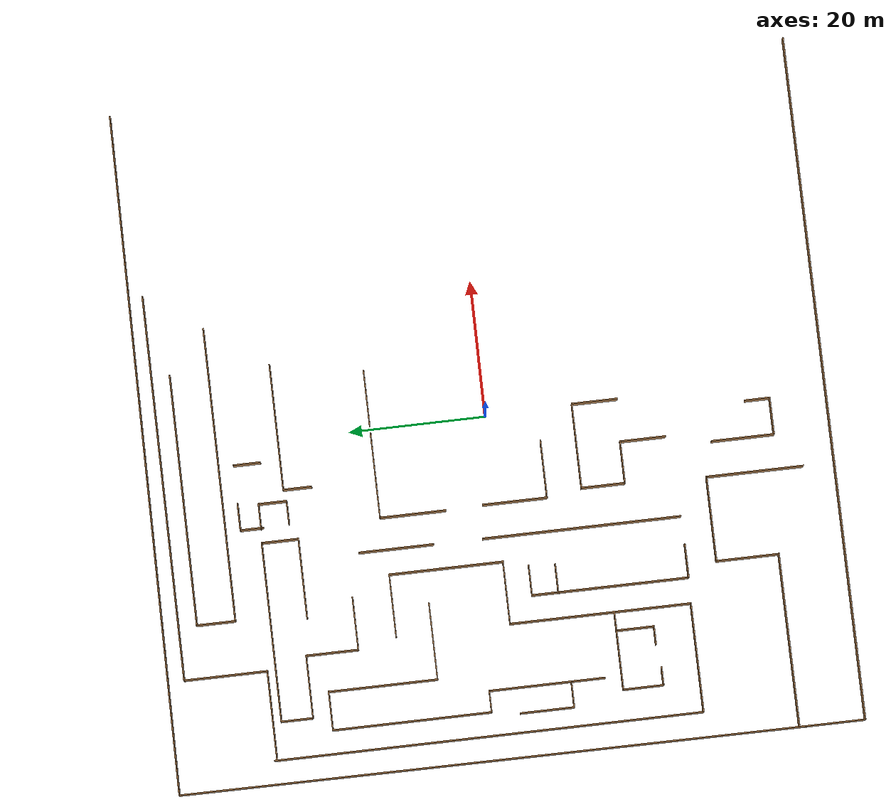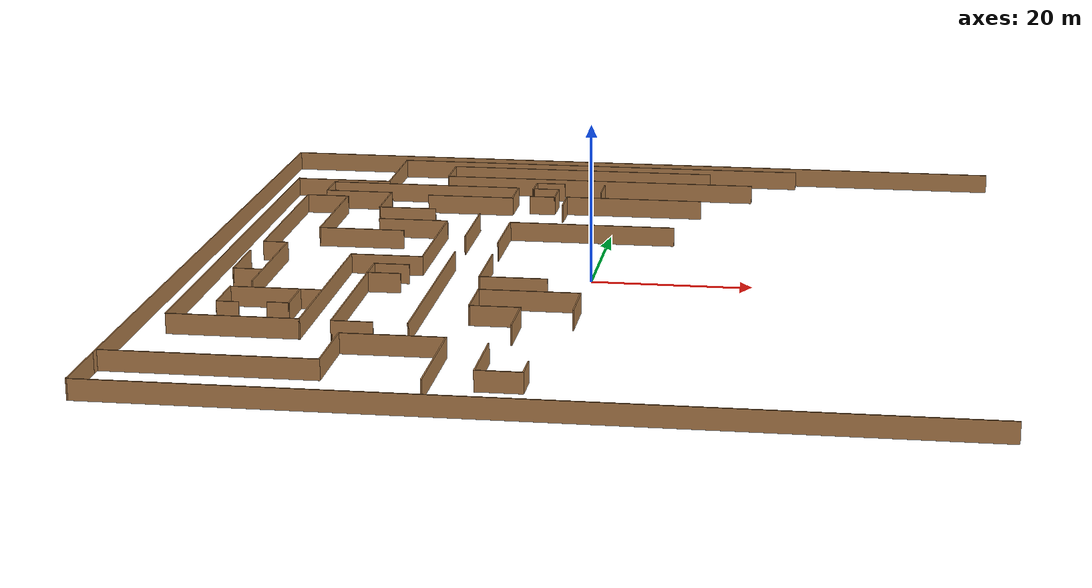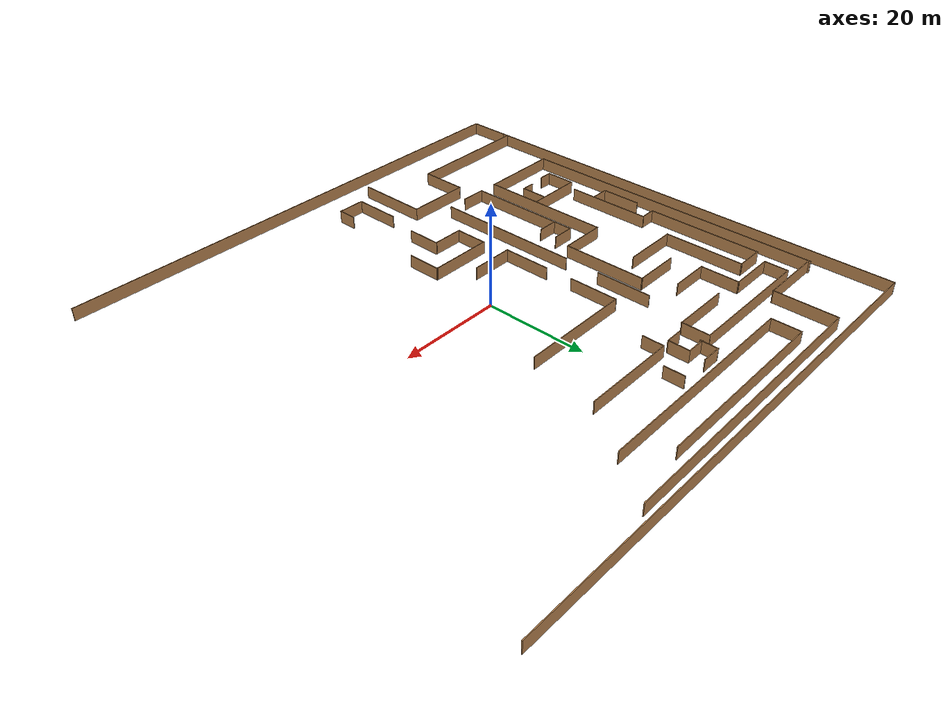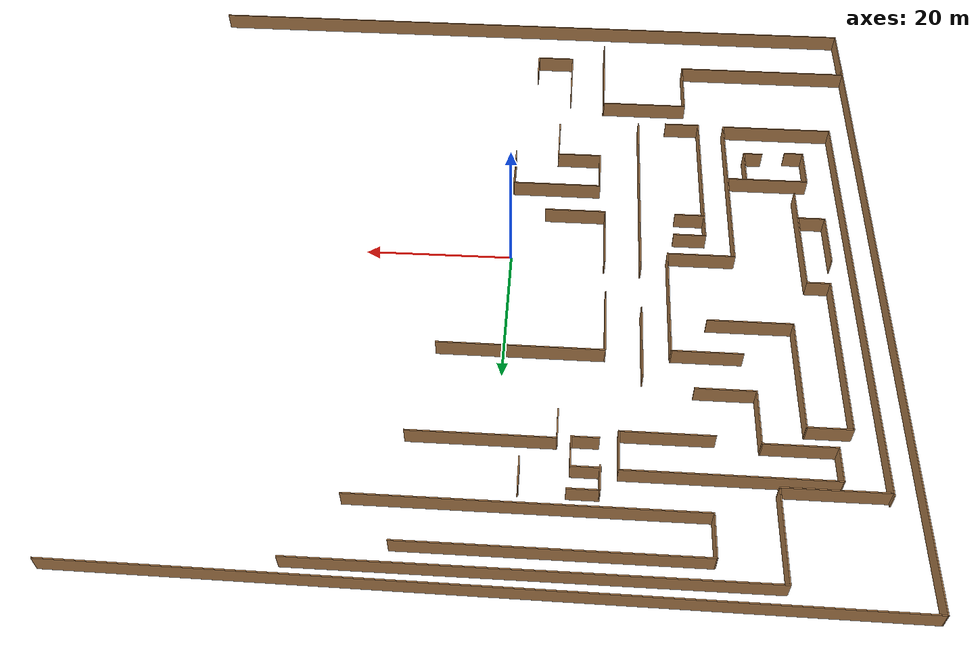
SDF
<sdf version="1.7">
 <model name="model4">
  <pose>0.113714 0.358597 0 0 -0 0</pose>
  <link name="Wall_100">
   <collision name="Wall_100_Collision">
    <geometry><box><size>26.25 0.15 2.5</size></box></geometry>
    <pose>0 0 1.25 0 -0 0</pose>
   </collision>
   <visual name="Wall_100_Visual">
    <pose>0 0 1.25 0 -0 0</pose>
    <geometry><box><size>26.25 0.15 2.5</size></box></geometry>
    <material>
     <script><uri>file://media/materials/scripts/gazebo.material</uri><name>Gazebo/Wood</name></script>
     <ambient>1 1 1 1</ambient>
    </material>
    <meta><layer>0</layer></meta>
   </visual>
   <pose>-27.882 34.0515 0 0 -0 0</pose>
  </link>
  <link name="Wall_101">
   <collision name="Wall_101_Collision">
    <geometry><box><size>5.5 0.15 2.5</size></box></geometry>
    <pose>0 0 1.25 0 -0 0</pose>
   </collision>
   <visual name="Wall_101_Visual">
    <pose>0 0 1.25 0 -0 0</pose>
    <geometry><box><size>5.5 0.15 2.5</size></box></geometry>
    <material>
     <script><uri>file://media/materials/scripts/gazebo.material</uri><name>Gazebo/Wood</name></script>
     <ambient>1 1 1 1</ambient>
    </material>
    <meta><layer>0</layer></meta>
   </visual>
   <pose>-14.832 31.3765 0 0 -0 -1.5708</pose>
  </link>
  <link name="Wall_102">
   <collision name="Wall_102_Collision">
    <geometry><box><size>11.75 0.15 2.5</size></box></geometry>
    <pose>0 0 1.25 0 -0 0</pose>
   </collision>
   <visual name="Wall_102_Visual">
    <pose>0 0 1.25 0 -0 0</pose>
    <geometry><box><size>11.75 0.15 2.5</size></box></geometry>
    <material>
     <script><uri>file://media/materials/scripts/gazebo.material</uri><name>Gazebo/Wood</name></script>
     <ambient>1 1 1 1</ambient>
    </material>
    <meta><layer>0</layer></meta>
   </visual>
   <pose>-20.632 28.7015 0 0 -0 3.14159</pose>
  </link>
  <link name="Wall_105">
   <collision name="Wall_105_Collision">
    <geometry><box><size>43 0.15 2.5</size></box></geometry>
    <pose>0 0 1.25 0 -0 0</pose>
   </collision>
   <visual name="Wall_105_Visual">
    <pose>0 0 1.25 0 -0 0</pose>
    <geometry><box><size>43 0.15 2.5</size></box></geometry>
    <material>
     <script><uri>file://media/materials/scripts/gazebo.material</uri><name>Gazebo/Wood</name></script>
     <ambient>1 1 1 1</ambient>
    </material>
    <meta><layer>0</layer></meta>
   </visual>
   <pose>-4.24968 39.0874 0 0 -0 3.14159</pose>
  </link>
  <link name="Wall_106">
   <collision name="Wall_106_Collision">
    <geometry><box><size>5.75 0.15 2.5</size></box></geometry>
    <pose>0 0 1.25 0 -0 0</pose>
   </collision>
   <visual name="Wall_106_Visual">
    <pose>0 0 1.25 0 -0 0</pose>
    <geometry><box><size>5.75 0.15 2.5</size></box></geometry>
    <material>
     <script><uri>file://media/materials/scripts/gazebo.material</uri><name>Gazebo/Wood</name></script>
     <ambient>1 1 1 1</ambient>
    </material>
    <meta><layer>0</layer></meta>
   </visual>
   <pose>-25.6747 41.8874 0 0 -0 1.5708</pose>
  </link>
  <link name="Wall_107">
   <collision name="Wall_107_Collision">
    <geometry><box><size>36.75 0.15 2.5</size></box></geometry>
    <pose>0 0 1.25 0 -0 0</pose>
   </collision>
   <visual name="Wall_107_Visual">
    <pose>0 0 1.25 0 -0 0</pose>
    <geometry><box><size>36.75 0.15 2.5</size></box></geometry>
    <material>
     <script><uri>file://media/materials/scripts/gazebo.material</uri><name>Gazebo/Wood</name></script>
     <ambient>1 1 1 1</ambient>
    </material>
    <meta><layer>0</layer></meta>
   </visual>
   <pose>-7.37468 44.6874 0 0 -0 0</pose>
  </link>
  <link name="Wall_109">
   <collision name="Wall_109_Collision">
    <geometry><box><size>4.25 0.15 2.5</size></box></geometry>
    <pose>0 0 1.25 0 -0 0</pose>
   </collision>
   <visual name="Wall_109_Visual">
    <pose>0 0 1.25 0 -0 0</pose>
    <geometry><box><size>4.25 0.15 2.5</size></box></geometry>
    <material>
     <script><uri>file://media/materials/scripts/gazebo.material</uri><name>Gazebo/Wood</name></script>
     <ambient>1 1 1 1</ambient>
    </material>
    <meta><layer>0</layer></meta>
   </visual>
   <pose>-7.48087 28.0423 0 0 -0 1.5708</pose>
  </link>
  <link name="Wall_110">
   <collision name="Wall_110_Collision">
    <geometry><box><size>18.5 0.15 2.5</size></box></geometry>
    <pose>0 0 1.25 0 -0 0</pose>
   </collision>
   <visual name="Wall_110_Visual">
    <pose>0 0 1.25 0 -0 0</pose>
    <geometry><box><size>18.5 0.15 2.5</size></box></geometry>
    <material>
     <script><uri>file://media/materials/scripts/gazebo.material</uri><name>Gazebo/Wood</name></script>
     <ambient>1 1 1 1</ambient>
    </material>
    <meta><layer>0</layer></meta>
   </visual>
   <pose>1.69413 30.0923 0 0 -0 0</pose>
  </link>
  <link name="Wall_115">
   <collision name="Wall_115_Collision">
    <geometry><box><size>4 0.15 2.5</size></box></geometry>
    <pose>0 0 1.25 0 -0 0</pose>
   </collision>
   <visual name="Wall_115_Visual">
    <pose>0 0 1.25 0 -0 0</pose>
    <geometry><box><size>4 0.15 2.5</size></box></geometry>
    <material>
     <script><uri>file://media/materials/scripts/gazebo.material</uri><name>Gazebo/Wood</name></script>
     <ambient>1 1 1 1</ambient>
    </material>
    <meta><layer>0</layer></meta>
   </visual>
   <pose>-3.13087 34.9173 0 0 -0 -1.5708</pose>
  </link>
  <link name="Wall_129">
   <collision name="Wall_129_Collision">
    <geometry><box><size>4 0.15 2.5</size></box></geometry>
    <pose>0 0 1.25 0 -0 0</pose>
   </collision>
   <visual name="Wall_129_Visual">
    <pose>0 0 1.25 0 -0 0</pose>
    <geometry><box><size>4 0.15 2.5</size></box></geometry>
    <material>
     <script><uri>file://media/materials/scripts/gazebo.material</uri><name>Gazebo/Wood</name></script>
     <ambient>1 1 1 1</ambient>
    </material>
    <meta><layer>0</layer></meta>
   </visual>
   <pose>-10.7234 36.9088 0 0 -0 3.14159</pose>
  </link>
  <link name="Wall_130">
   <collision name="Wall_130_Collision">
    <geometry><box><size>3.5 0.15 2.5</size></box></geometry>
    <pose>0 0 1.25 0 -0 0</pose>
   </collision>
   <visual name="Wall_130_Visual">
    <pose>0 0 1.25 0 -0 0</pose>
    <geometry><box><size>3.5 0.15 2.5</size></box></geometry>
    <material>
     <script><uri>file://media/materials/scripts/gazebo.material</uri><name>Gazebo/Wood</name></script>
     <ambient>1 1 1 1</ambient>
    </material>
    <meta><layer>0</layer></meta>
   </visual>
   <pose>-12.6484 35.2338 0 0 -0 -1.5708</pose>
  </link>
  <link name="Wall_133">
   <collision name="Wall_133_Collision">
    <geometry><box><size>3.75 0.15 2.5</size></box></geometry>
    <pose>0 0 1.25 0 -0 0</pose>
   </collision>
   <visual name="Wall_133_Visual">
    <pose>0 0 1.25 0 -0 0</pose>
    <geometry><box><size>3.75 0.15 2.5</size></box></geometry>
    <material>
     <script><uri>file://media/materials/scripts/gazebo.material</uri><name>Gazebo/Wood</name></script>
     <ambient>1 1 1 1</ambient>
    </material>
    <meta><layer>0</layer></meta>
   </visual>
   <pose>-10.9509 33.8973 0 0 -0 0</pose>
  </link>
  <link name="Wall_134">
   <collision name="Wall_134_Collision">
    <geometry><box><size>4.25 0.15 2.5</size></box></geometry>
    <pose>0 0 1.25 0 -0 0</pose>
   </collision>
   <visual name="Wall_134_Visual">
    <pose>0 0 1.25 0 -0 0</pose>
    <geometry><box><size>4.25 0.15 2.5</size></box></geometry>
    <material>
     <script><uri>file://media/materials/scripts/gazebo.material</uri><name>Gazebo/Wood</name></script>
     <ambient>1 1 1 1</ambient>
    </material>
    <meta><layer>0</layer></meta>
   </visual>
   <pose>-9.1509 31.8473 0 0 -0 -1.5708</pose>
  </link>
  <link name="Wall_135">
   <collision name="Wall_135_Collision">
    <geometry><box><size>3.5 0.15 2.5</size></box></geometry>
    <pose>0 0 1.25 0 -0 0</pose>
   </collision>
   <visual name="Wall_135_Visual">
    <pose>0 0 1.25 0 -0 0</pose>
    <geometry><box><size>3.5 0.15 2.5</size></box></geometry>
    <material>
     <script><uri>file://media/materials/scripts/gazebo.material</uri><name>Gazebo/Wood</name></script>
     <ambient>1 1 1 1</ambient>
    </material>
    <meta><layer>0</layer></meta>
   </visual>
   <pose>-10.8259 29.7973 0 0 -0 3.14159</pose>
  </link>
  <link name="Wall_139">
   <collision name="Wall_139_Collision">
    <geometry><box><size>9.25 0.15 2.5</size></box></geometry>
    <pose>0 0 1.25 0 -0 0</pose>
   </collision>
   <visual name="Wall_139_Visual">
    <pose>0 0 1.25 0 -0 0</pose>
    <geometry><box><size>9.25 0.15 2.5</size></box></geometry>
    <material>
     <script><uri>file://media/materials/scripts/gazebo.material</uri><name>Gazebo/Wood</name></script>
     <ambient>1 1 1 1</ambient>
    </material>
    <meta><layer>0</layer></meta>
   </visual>
   <pose>-7.48087 -37.0926 0 0 -0 -1.5708</pose>
  </link>
  <link name="Wall_140">
   <collision name="Wall_140_Collision">
    <geometry><box><size>5.5 0.15 2.5</size></box></geometry>
    <pose>0 0 1.25 0 -0 0</pose>
   </collision>
   <visual name="Wall_140_Visual">
    <pose>0 0 1.25 0 -0 0</pose>
    <geometry><box><size>5.5 0.15 2.5</size></box></geometry>
    <material>
     <script><uri>file://media/materials/scripts/gazebo.material</uri><name>Gazebo/Wood</name></script>
     <ambient>1 1 1 1</ambient>
    </material>
    <meta><layer>0</layer></meta>
   </visual>
   <pose>-4.80587 -41.6427 0 0 -0 0</pose>
  </link>
  <link name="Wall_141">
   <collision name="Wall_141_Collision">
    <geometry><box><size>3.75 0.15 2.5</size></box></geometry>
    <pose>0 0 1.25 0 -0 0</pose>
   </collision>
   <visual name="Wall_141_Visual">
    <pose>0 0 1.25 0 -0 0</pose>
    <geometry><box><size>3.75 0.15 2.5</size></box></geometry>
    <material>
     <script><uri>file://media/materials/scripts/gazebo.material</uri><name>Gazebo/Wood</name></script>
     <ambient>1 1 1 1</ambient>
    </material>
    <meta><layer>0</layer></meta>
   </visual>
   <pose>-2.13087 -39.8426 0 0 -0 1.5708</pose>
  </link>
  <link name="Wall_154">
   <collision name="Wall_154_Collision">
    <geometry><box><size>6.75 0.15 2.5</size></box></geometry>
    <pose>0 0 1.25 0 -0 0</pose>
   </collision>
   <visual name="Wall_154_Visual">
    <pose>0 0 1.25 0 -0 0</pose>
    <geometry><box><size>6.75 0.15 2.5</size></box></geometry>
    <material>
     <script><uri>file://media/materials/scripts/gazebo.material</uri><name>Gazebo/Wood</name></script>
     <ambient>1 1 1 1</ambient>
    </material>
    <meta><layer>0</layer></meta>
   </visual>
   <pose>0.235952 -16.2558 0 0 -0 1.5708</pose>
  </link>
  <link name="Wall_155">
   <collision name="Wall_155_Collision">
    <geometry><box><size>12.5 0.15 2.5</size></box></geometry>
    <pose>0 0 1.25 0 -0 0</pose>
   </collision>
   <visual name="Wall_155_Visual">
    <pose>0 0 1.25 0 -0 0</pose>
    <geometry><box><size>12.5 0.15 2.5</size></box></geometry>
    <material>
     <script><uri>file://media/materials/scripts/gazebo.material</uri><name>Gazebo/Wood</name></script>
     <ambient>1 1 1 1</ambient>
    </material>
    <meta><layer>0</layer></meta>
   </visual>
   <pose>-5.93905 -12.9558 0 0 -0 3.14159</pose>
  </link>
  <link name="Wall_156">
   <collision name="Wall_156_Collision">
    <geometry><box><size>6.5 0.15 2.5</size></box></geometry>
    <pose>0 0 1.25 0 -0 0</pose>
   </collision>
   <visual name="Wall_156_Visual">
    <pose>0 0 1.25 0 -0 0</pose>
    <geometry><box><size>6.5 0.15 2.5</size></box></geometry>
    <material>
     <script><uri>file://media/materials/scripts/gazebo.material</uri><name>Gazebo/Wood</name></script>
     <ambient>1 1 1 1</ambient>
    </material>
    <meta><layer>0</layer></meta>
   </visual>
   <pose>-12.114 -16.1308 0 0 -0 -1.5708</pose>
  </link>
  <link name="Wall_157">
   <collision name="Wall_157_Collision">
    <geometry><box><size>6.25 0.15 2.5</size></box></geometry>
    <pose>0 0 1.25 0 -0 0</pose>
   </collision>
   <visual name="Wall_157_Visual">
    <pose>0 0 1.25 0 -0 0</pose>
    <geometry><box><size>6.25 0.15 2.5</size></box></geometry>
    <material>
     <script><uri>file://media/materials/scripts/gazebo.material</uri><name>Gazebo/Wood</name></script>
     <ambient>1 1 1 1</ambient>
    </material>
    <meta><layer>0</layer></meta>
   </visual>
   <pose>-9.06405 -19.3058 0 0 -0 0</pose>
  </link>
  <link name="Wall_158">
   <collision name="Wall_158_Collision">
    <geometry><box><size>6.75 0.15 2.5</size></box></geometry>
    <pose>0 0 1.25 0 -0 0</pose>
   </collision>
   <visual name="Wall_158_Visual">
    <pose>0 0 1.25 0 -0 0</pose>
    <geometry><box><size>6.75 0.15 2.5</size></box></geometry>
    <material>
     <script><uri>file://media/materials/scripts/gazebo.material</uri><name>Gazebo/Wood</name></script>
     <ambient>1 1 1 1</ambient>
    </material>
    <meta><layer>0</layer></meta>
   </visual>
   <pose>-6.01405 -22.6058 0 0 -0 -1.5708</pose>
  </link>
  <link name="Wall_20">
   <collision name="Wall_20_Collision">
    <geometry><box><size>91.4233 0.15 2.5</size></box></geometry>
    <pose>0 0 1.25 0 -0 0</pose>
   </collision>
   <visual name="Wall_20_Visual">
    <pose>0 0 1.25 0 -0 0</pose>
    <geometry><box><size>91.4233 0.15 2.5</size></box></geometry>
    <material>
     <script><uri>file://media/materials/scripts/gazebo.material</uri><name>Gazebo/Wood</name></script>
     <ambient>1 1 1 1</ambient>
    </material>
    <meta><layer>0</layer></meta>
   </visual>
   <pose>-50.0112 4.21794 0 0 -0 1.56721</pose>
  </link>
  <link name="Wall_22">
   <collision name="Wall_22_Collision">
    <geometry><box><size>8.75 0.15 2.5</size></box></geometry>
    <pose>0 0 1.25 0 -0 0</pose>
   </collision>
   <visual name="Wall_22_Visual">
    <pose>0 0 1.25 0 -0 0</pose>
    <geometry><box><size>8.75 0.15 2.5</size></box></geometry>
    <material>
     <script><uri>file://media/materials/scripts/gazebo.material</uri><name>Gazebo/Wood</name></script>
     <ambient>1 1 1 1</ambient>
    </material>
    <meta><layer>0</layer></meta>
   </visual>
   <pose>-50.1749 -45.5547 0 0 -0 -1.5708</pose>
  </link>
  <link name="Wall_24">
   <collision name="Wall_24_Collision">
    <geometry><box><size>100.5 0.15 2.5</size></box></geometry>
    <pose>0 0 1.25 0 -0 0</pose>
   </collision>
   <visual name="Wall_24_Visual">
    <pose>0 0 1.25 0 -0 0</pose>
    <geometry><box><size>100.5 0.15 2.5</size></box></geometry>
    <material>
     <script><uri>file://media/materials/scripts/gazebo.material</uri><name>Gazebo/Wood</name></script>
     <ambient>1 1 1 1</ambient>
    </material>
    <meta><layer>0</layer></meta>
   </visual>
   <pose>0.000134 -49.8547 0 0 -0 0</pose>
  </link>
  <link name="Wall_28">
   <collision name="Wall_28_Collision">
    <geometry><box><size>99.8241 0.15 2.5</size></box></geometry>
    <pose>0 0 1.25 0 -0 0</pose>
   </collision>
   <visual name="Wall_28_Visual">
    <pose>0 0 1.25 0 -0 0</pose>
    <geometry><box><size>99.8241 0.15 2.5</size></box></geometry>
    <material>
     <script><uri>file://media/materials/scripts/gazebo.material</uri><name>Gazebo/Wood</name></script>
     <ambient>1 1 1 1</ambient>
    </material>
    <meta><layer>0</layer></meta>
   </visual>
   <pose>-0.011429 49.5513 0 0 -0 -0.006079</pose>
  </link>
  <link name="Wall_31">
   <collision name="Wall_31_Collision">
    <geometry><box><size>25.25 0.15 2.5</size></box></geometry>
    <pose>0 0 1.25 0 -0 0</pose>
   </collision>
   <visual name="Wall_31_Visual">
    <pose>0 0 1.25 0 -0 0</pose>
    <geometry><box><size>25.25 0.15 2.5</size></box></geometry>
    <material>
     <script><uri>file://media/materials/scripts/gazebo.material</uri><name>Gazebo/Wood</name></script>
     <ambient>1 1 1 1</ambient>
    </material>
    <meta><layer>0</layer></meta>
   </visual>
   <pose>-37.4612 -40.2727 0 0 -0 0</pose>
  </link>
  <link name="Wall_32">
   <collision name="Wall_32_Collision">
    <geometry><box><size>9.25 0.15 2.5</size></box></geometry>
    <pose>0 0 1.25 0 -0 0</pose>
   </collision>
   <visual name="Wall_32_Visual">
    <pose>0 0 1.25 0 -0 0</pose>
    <geometry><box><size>9.25 0.15 2.5</size></box></geometry>
    <material>
     <script><uri>file://media/materials/scripts/gazebo.material</uri><name>Gazebo/Wood</name></script>
     <ambient>1 1 1 1</ambient>
    </material>
    <meta><layer>0</layer></meta>
   </visual>
   <pose>-24.9112 -35.7227 0 0 -0 1.5708</pose>
  </link>
  <link name="Wall_33">
   <collision name="Wall_33_Collision">
    <geometry><box><size>12.5 0.15 2.5</size></box></geometry>
    <pose>0 0 1.25 0 -0 0</pose>
   </collision>
   <visual name="Wall_33_Visual">
    <pose>0 0 1.25 0 -0 0</pose>
    <geometry><box><size>12.5 0.15 2.5</size></box></geometry>
    <material>
     <script><uri>file://media/materials/scripts/gazebo.material</uri><name>Gazebo/Wood</name></script>
     <ambient>1 1 1 1</ambient>
    </material>
    <meta><layer>0</layer></meta>
   </visual>
   <pose>-18.7362 -31.1727 0 0 -0 0</pose>
  </link>
  <link name="Wall_34">
   <collision name="Wall_34_Collision">
    <geometry><box><size>14.25 0.15 2.5</size></box></geometry>
    <pose>0 0 1.25 0 -0 0</pose>
   </collision>
   <visual name="Wall_34_Visual">
    <pose>0 0 1.25 0 -0 0</pose>
    <geometry><box><size>14.25 0.15 2.5</size></box></geometry>
    <material>
     <script><uri>file://media/materials/scripts/gazebo.material</uri><name>Gazebo/Wood</name></script>
     <ambient>1 1 1 1</ambient>
    </material>
    <meta><layer>0</layer></meta>
   </visual>
   <pose>-12.5612 -38.2227 0 0 -0 -1.5708</pose>
  </link>
  <link name="Wall_45">
   <collision name="Wall_45_Collision">
    <geometry><box><size>56.5 0.15 2.5</size></box></geometry>
    <pose>0 0 1.25 0 -0 0</pose>
   </collision>
   <visual name="Wall_45_Visual">
    <pose>0 0 1.25 0 -0 0</pose>
    <geometry><box><size>56.5 0.15 2.5</size></box></geometry>
    <material>
     <script><uri>file://media/materials/scripts/gazebo.material</uri><name>Gazebo/Wood</name></script>
     <ambient>1 1 1 1</ambient>
    </material>
    <meta><layer>0</layer></meta>
   </visual>
   <pose>-5.2362 47.3773 0 0 -0 3.14159</pose>
  </link>
  <link name="Wall_46">
   <collision name="Wall_46_Collision">
    <geometry><box><size>12.25 0.15 2.5</size></box></geometry>
    <pose>0 0 1.25 0 -0 0</pose>
   </collision>
   <visual name="Wall_46_Visual">
    <pose>0 0 1.25 0 -0 0</pose>
    <geometry><box><size>12.25 0.15 2.5</size></box></geometry>
    <material>
     <script><uri>file://media/materials/scripts/gazebo.material</uri><name>Gazebo/Wood</name></script>
     <ambient>1 1 1 1</ambient>
    </material>
    <meta><layer>0</layer></meta>
   </visual>
   <pose>-33.4112 41.3273 0 0 -0 -1.5708</pose>
  </link>
  <link name="Wall_47">
   <collision name="Wall_47_Collision">
    <geometry><box><size>13 0.15 2.5</size></box></geometry>
    <pose>0 0 1.25 0 -0 0</pose>
   </collision>
   <visual name="Wall_47_Visual">
    <pose>0 0 1.25 0 -0 0</pose>
    <geometry><box><size>13 0.15 2.5</size></box></geometry>
    <material>
     <script><uri>file://media/materials/scripts/gazebo.material</uri><name>Gazebo/Wood</name></script>
     <ambient>1 1 1 1</ambient>
    </material>
    <meta><layer>0</layer></meta>
   </visual>
   <pose>-39.8362 35.2773 0 0 -0 3.14159</pose>
  </link>
  <link name="Wall_50">
   <collision name="Wall_50_Collision">
    <geometry><box><size>62.5 0.15 2.5</size></box></geometry>
    <pose>0 0 1.25 0 -0 0</pose>
   </collision>
   <visual name="Wall_50_Visual">
    <pose>0 0 1.25 0 -0 0</pose>
    <geometry><box><size>62.5 0.15 2.5</size></box></geometry>
    <material>
     <script><uri>file://media/materials/scripts/gazebo.material</uri><name>Gazebo/Wood</name></script>
     <ambient>1 1 1 1</ambient>
    </material>
    <meta><layer>0</layer></meta>
   </visual>
   <pose>-46.4414 4.41625 0 0 -0 -1.5708</pose>
  </link>
  <link name="Wall_51">
   <collision name="Wall_51_Collision">
    <geometry><box><size>16 0.15 2.5</size></box></geometry>
    <pose>0 0 1.25 0 -0 0</pose>
   </collision>
   <visual name="Wall_51_Visual">
    <pose>0 0 1.25 0 -0 0</pose>
    <geometry><box><size>16 0.15 2.5</size></box></geometry>
    <material>
     <script><uri>file://media/materials/scripts/gazebo.material</uri><name>Gazebo/Wood</name></script>
     <ambient>1 1 1 1</ambient>
    </material>
    <meta><layer>0</layer></meta>
   </visual>
   <pose>-38.5164 -26.7588 0 0 -0 0</pose>
  </link>
  <link name="Wall_52">
   <collision name="Wall_52_Collision">
    <geometry><box><size>26.5 0.15 2.5</size></box></geometry>
    <pose>0 0 1.25 0 -0 0</pose>
   </collision>
   <visual name="Wall_52_Visual">
    <pose>0 0 1.25 0 -0 0</pose>
    <geometry><box><size>26.5 0.15 2.5</size></box></geometry>
    <material>
     <script><uri>file://media/materials/scripts/gazebo.material</uri><name>Gazebo/Wood</name></script>
     <ambient>1 1 1 1</ambient>
    </material>
    <meta><layer>0</layer></meta>
   </visual>
   <pose>-30.5914 -13.5838 0 0 -0 1.5708</pose>
  </link>
  <link name="Wall_54">
   <collision name="Wall_54_Collision">
    <geometry><box><size>9.75 0.15 2.5</size></box></geometry>
    <pose>0 0 1.25 0 -0 0</pose>
   </collision>
   <visual name="Wall_54_Visual">
    <pose>0 0 1.25 0 -0 0</pose>
    <geometry><box><size>9.75 0.15 2.5</size></box></geometry>
    <material>
     <script><uri>file://media/materials/scripts/gazebo.material</uri><name>Gazebo/Wood</name></script>
     <ambient>1 1 1 1</ambient>
    </material>
    <meta><layer>0</layer></meta>
   </visual>
   <pose>-13.1273 11.7825 0 0 -0 1.5708</pose>
  </link>
  <link name="Wall_55">
   <collision name="Wall_55_Collision">
    <geometry><box><size>21.75 0.15 2.5</size></box></geometry>
    <pose>0 0 1.25 0 -0 0</pose>
   </collision>
   <visual name="Wall_55_Visual">
    <pose>0 0 1.25 0 -0 0</pose>
    <geometry><box><size>21.75 0.15 2.5</size></box></geometry>
    <material>
     <script><uri>file://media/materials/scripts/gazebo.material</uri><name>Gazebo/Wood</name></script>
     <ambient>1 1 1 1</ambient>
    </material>
    <meta><layer>0</layer></meta>
   </visual>
   <pose>-2.32733 16.5825 0 0 -0 0</pose>
  </link>
  <link name="Wall_58">
   <collision name="Wall_58_Collision">
    <geometry><box><size>9.5 0.15 2.5</size></box></geometry>
    <pose>0 0 1.25 0 -0 0</pose>
   </collision>
   <visual name="Wall_58_Visual">
    <pose>0 0 1.25 0 -0 0</pose>
    <geometry><box><size>9.5 0.15 2.5</size></box></geometry>
    <material>
     <script><uri>file://media/materials/scripts/gazebo.material</uri><name>Gazebo/Wood</name></script>
     <ambient>1 1 1 1</ambient>
    </material>
    <meta><layer>0</layer></meta>
   </visual>
   <pose>-12.9391 -3.1507 0 0 -0 -1.5708</pose>
  </link>
  <link name="Wall_59">
   <collision name="Wall_59_Collision">
    <geometry><box><size>8.5 0.15 2.5</size></box></geometry>
    <pose>0 0 1.25 0 -0 0</pose>
   </collision>
   <visual name="Wall_59_Visual">
    <pose>0 0 1.25 0 -0 0</pose>
    <geometry><box><size>8.5 0.15 2.5</size></box></geometry>
    <material>
     <script><uri>file://media/materials/scripts/gazebo.material</uri><name>Gazebo/Wood</name></script>
     <ambient>1 1 1 1</ambient>
    </material>
    <meta><layer>0</layer></meta>
   </visual>
   <pose>-8.76411 -7.8257 0 0 -0 0</pose>
  </link>
  <link name="Wall_65">
   <collision name="Wall_65_Collision">
    <geometry><box><size>9.25 0.15 2.5</size></box></geometry>
    <pose>0 0 1.25 0 -0 0</pose>
   </collision>
   <visual name="Wall_65_Visual">
    <pose>0 0 1.25 0 -0 0</pose>
    <geometry><box><size>9.25 0.15 2.5</size></box></geometry>
    <material>
     <script><uri>file://media/materials/scripts/gazebo.material</uri><name>Gazebo/Wood</name></script>
     <ambient>1 1 1 1</ambient>
    </material>
    <meta><layer>0</layer></meta>
   </visual>
   <pose>-26.0414 -0.408754 0 0 -0 0</pose>
  </link>
  <link name="Wall_66">
   <collision name="Wall_66_Collision">
    <geometry><box><size>16.75 0.15 2.5</size></box></geometry>
    <pose>0 0 1.25 0 -0 0</pose>
   </collision>
   <visual name="Wall_66_Visual">
    <pose>0 0 1.25 0 -0 0</pose>
    <geometry><box><size>16.75 0.15 2.5</size></box></geometry>
    <material>
     <script><uri>file://media/materials/scripts/gazebo.material</uri><name>Gazebo/Wood</name></script>
     <ambient>1 1 1 1</ambient>
    </material>
    <meta><layer>0</layer></meta>
   </visual>
   <pose>-21.4914 7.89125 0 0 -0 1.5708</pose>
  </link>
  <link name="Wall_67">
   <collision name="Wall_67_Collision">
    <geometry><box><size>9.25 0.15 2.5</size></box></geometry>
    <pose>0 0 1.25 0 -0 0</pose>
   </collision>
   <visual name="Wall_67_Visual">
    <pose>0 0 1.25 0 -0 0</pose>
    <geometry><box><size>9.25 0.15 2.5</size></box></geometry>
    <material>
     <script><uri>file://media/materials/scripts/gazebo.material</uri><name>Gazebo/Wood</name></script>
     <ambient>1 1 1 1</ambient>
    </material>
    <meta><layer>0</layer></meta>
   </visual>
   <pose>-26.0414 16.1912 0 0 -0 3.14159</pose>
  </link>
  <link name="Wall_69">
   <collision name="Wall_69_Collision">
    <geometry><box><size>11.25 0.15 2.5</size></box></geometry>
    <pose>0 0 1.25 0 -0 0</pose>
   </collision>
   <visual name="Wall_69_Visual">
    <pose>0 0 1.25 0 -0 0</pose>
    <geometry><box><size>11.25 0.15 2.5</size></box></geometry>
    <material>
     <script><uri>file://media/materials/scripts/gazebo.material</uri><name>Gazebo/Wood</name></script>
     <ambient>1 1 1 1</ambient>
    </material>
    <meta><layer>0</layer></meta>
   </visual>
   <pose>-31.8524 10.9351 0 0 -0 3.14159</pose>
  </link>
  <link name="Wall_70">
   <collision name="Wall_70_Collision">
    <geometry><box><size>16 0.15 2.5</size></box></geometry>
    <pose>0 0 1.25 0 -0 0</pose>
   </collision>
   <visual name="Wall_70_Visual">
    <pose>0 0 1.25 0 -0 0</pose>
    <geometry><box><size>16 0.15 2.5</size></box></geometry>
    <material>
     <script><uri>file://media/materials/scripts/gazebo.material</uri><name>Gazebo/Wood</name></script>
     <ambient>1 1 1 1</ambient>
    </material>
    <meta><layer>0</layer></meta>
   </visual>
   <pose>-37.4024 18.8601 0 0 -0 1.5708</pose>
  </link>
  <link name="Wall_71">
   <collision name="Wall_71_Collision">
    <geometry><box><size>5.75 0.15 2.5</size></box></geometry>
    <pose>0 0 1.25 0 -0 0</pose>
   </collision>
   <visual name="Wall_71_Visual">
    <pose>0 0 1.25 0 -0 0</pose>
    <geometry><box><size>5.75 0.15 2.5</size></box></geometry>
    <material>
     <script><uri>file://media/materials/scripts/gazebo.material</uri><name>Gazebo/Wood</name></script>
     <ambient>1 1 1 1</ambient>
    </material>
    <meta><layer>0</layer></meta>
   </visual>
   <pose>-40.2024 26.7851 0 0 -0 3.14159</pose>
  </link>
  <link name="Wall_72">
   <collision name="Wall_72_Collision">
    <geometry><box><size>23.25 0.15 2.5</size></box></geometry>
    <pose>0 0 1.25 0 -0 0</pose>
   </collision>
   <visual name="Wall_72_Visual">
    <pose>0 0 1.25 0 -0 0</pose>
    <geometry><box><size>23.25 0.15 2.5</size></box></geometry>
    <material>
     <script><uri>file://media/materials/scripts/gazebo.material</uri><name>Gazebo/Wood</name></script>
     <ambient>1 1 1 1</ambient>
    </material>
    <meta><layer>0</layer></meta>
   </visual>
   <pose>-43.0024 15.2351 0 0 -0 -1.5708</pose>
  </link>
  <link name="Wall_73">
   <collision name="Wall_73_Collision">
    <geometry><box><size>3.25 0.15 2.5</size></box></geometry>
    <pose>0 0 1.25 0 -0 0</pose>
   </collision>
   <visual name="Wall_73_Visual">
    <pose>0 0 1.25 0 -0 0</pose>
    <geometry><box><size>3.25 0.15 2.5</size></box></geometry>
    <material>
     <script><uri>file://media/materials/scripts/gazebo.material</uri><name>Gazebo/Wood</name></script>
     <ambient>1 1 1 1</ambient>
    </material>
    <meta><layer>0</layer></meta>
   </visual>
   <pose>-41.4524 3.68506 0 0 -0 0</pose>
  </link>
  <link name="Wall_74">
   <collision name="Wall_74_Collision">
    <geometry><box><size>17 0.15 2.5</size></box></geometry>
    <pose>0 0 1.25 0 -0 0</pose>
   </collision>
   <visual name="Wall_74_Visual">
    <pose>0 0 1.25 0 -0 0</pose>
    <geometry><box><size>17 0.15 2.5</size></box></geometry>
    <material>
     <script><uri>file://media/materials/scripts/gazebo.material</uri><name>Gazebo/Wood</name></script>
     <ambient>1 1 1 1</ambient>
    </material>
    <meta><layer>0</layer></meta>
   </visual>
   <pose>-39.9024 -4.73994 0 0 -0 -1.5708</pose>
  </link>
  <link name="Wall_76">
   <collision name="Wall_76_Collision">
    <geometry><box><size>3.75 0.15 2.5</size></box></geometry>
    <pose>0 0 1.25 0 -0 0</pose>
   </collision>
   <visual name="Wall_76_Visual">
    <pose>0 0 1.25 0 -0 0</pose>
    <geometry><box><size>3.75 0.15 2.5</size></box></geometry>
    <material>
     <script><uri>file://media/materials/scripts/gazebo.material</uri><name>Gazebo/Wood</name></script>
     <ambient>1 1 1 1</ambient>
    </material>
    <meta><layer>0</layer></meta>
   </visual>
   <pose>-41.8421 -8.26289 0 0 -0 3.14159</pose>
  </link>
  <link name="Wall_77">
   <collision name="Wall_77_Collision">
    <geometry><box><size>8 0.15 2.5</size></box></geometry>
    <pose>0 0 1.25 0 -0 0</pose>
   </collision>
   <visual name="Wall_77_Visual">
    <pose>0 0 1.25 0 -0 0</pose>
    <geometry><box><size>8 0.15 2.5</size></box></geometry>
    <material>
     <script><uri>file://media/materials/scripts/gazebo.material</uri><name>Gazebo/Wood</name></script>
     <ambient>1 1 1 1</ambient>
    </material>
    <meta><layer>0</layer></meta>
   </visual>
   <pose>-43.6421 -4.33789 0 0 -0 1.5708</pose>
  </link>
  <link name="Wall_79">
   <collision name="Wall_79_Collision">
    <geometry><box><size>11.25 0.15 2.5</size></box></geometry>
    <pose>0 0 1.25 0 -0 0</pose>
   </collision>
   <visual name="Wall_79_Visual">
    <pose>0 0 1.25 0 -0 0</pose>
    <geometry><box><size>11.25 0.15 2.5</size></box></geometry>
    <material>
     <script><uri>file://media/materials/scripts/gazebo.material</uri><name>Gazebo/Wood</name></script>
     <ambient>1 1 1 1</ambient>
    </material>
    <meta><layer>0</layer></meta>
   </visual>
   <pose>-36.3696 -15.6033 0 0 -0 3.14159</pose>
  </link>
  <link name="Wall_80">
   <collision name="Wall_80_Collision">
    <geometry><box><size>6 0.15 2.5</size></box></geometry>
    <pose>0 0 1.25 0 -0 0</pose>
   </collision>
   <visual name="Wall_80_Visual">
    <pose>0 0 1.25 0 -0 0</pose>
    <geometry><box><size>6 0.15 2.5</size></box></geometry>
    <material>
     <script><uri>file://media/materials/scripts/gazebo.material</uri><name>Gazebo/Wood</name></script>
     <ambient>1 1 1 1</ambient>
    </material>
    <meta><layer>0</layer></meta>
   </visual>
   <pose>-41.9196 -18.5283 0 0 -0 -1.5708</pose>
  </link>
  <link name="Wall_81">
   <collision name="Wall_81_Collision">
    <geometry><box><size>2.75 0.15 2.5</size></box></geometry>
    <pose>0 0 1.25 0 -0 0</pose>
   </collision>
   <visual name="Wall_81_Visual">
    <pose>0 0 1.25 0 -0 0</pose>
    <geometry><box><size>2.75 0.15 2.5</size></box></geometry>
    <material>
     <script><uri>file://media/materials/scripts/gazebo.material</uri><name>Gazebo/Wood</name></script>
     <ambient>1 1 1 1</ambient>
    </material>
    <meta><layer>0</layer></meta>
   </visual>
   <pose>-40.6196 -21.4533 0 0 -0 0</pose>
  </link>
  <link name="Wall_83">
   <collision name="Wall_83_Collision">
    <geometry><box><size>2.75 0.15 2.5</size></box></geometry>
    <pose>0 0 1.25 0 -0 0</pose>
   </collision>
   <visual name="Wall_83_Visual">
    <pose>0 0 1.25 0 -0 0</pose>
    <geometry><box><size>2.75 0.15 2.5</size></box></geometry>
    <material>
     <script><uri>file://media/materials/scripts/gazebo.material</uri><name>Gazebo/Wood</name></script>
     <ambient>1 1 1 1</ambient>
    </material>
    <meta><layer>0</layer></meta>
   </visual>
   <pose>-34.6014 -21.0615 0 0 -0 0</pose>
  </link>
  <link name="Wall_84">
   <collision name="Wall_84_Collision">
    <geometry><box><size>5.5 0.15 2.5</size></box></geometry>
    <pose>0 0 1.25 0 -0 0</pose>
   </collision>
   <visual name="Wall_84_Visual">
    <pose>0 0 1.25 0 -0 0</pose>
    <geometry><box><size>5.5 0.15 2.5</size></box></geometry>
    <material>
     <script><uri>file://media/materials/scripts/gazebo.material</uri><name>Gazebo/Wood</name></script>
     <ambient>1 1 1 1</ambient>
    </material>
    <meta><layer>0</layer></meta>
   </visual>
   <pose>-33.3014 -18.3865 0 0 -0 1.5708</pose>
  </link>
  <link name="Wall_86">
   <collision name="Wall_86_Collision">
    <geometry><box><size>11 0.15 2.5</size></box></geometry>
    <pose>0 0 1.25 0 -0 0</pose>
   </collision>
   <visual name="Wall_86_Visual">
    <pose>0 0 1.25 0 -0 0</pose>
    <geometry><box><size>11 0.15 2.5</size></box></geometry>
    <material>
     <script><uri>file://media/materials/scripts/gazebo.material</uri><name>Gazebo/Wood</name></script>
     <ambient>1 1 1 1</ambient>
    </material>
    <meta><layer>0</layer></meta>
   </visual>
   <pose>-17.8327 14.7326 0 0 -0 -1.5708</pose>
  </link>
  <link name="Wall_88">
   <collision name="Wall_88_Collision">
    <geometry><box><size>29 0.15 2.5</size></box></geometry>
    <pose>0 0 1.25 0 -0 0</pose>
   </collision>
   <visual name="Wall_88_Visual">
    <pose>0 0 1.25 0 -0 0</pose>
    <geometry><box><size>29 0.15 2.5</size></box></geometry>
    <material>
     <script><uri>file://media/materials/scripts/gazebo.material</uri><name>Gazebo/Wood</name></script>
     <ambient>1 1 1 1</ambient>
    </material>
    <meta><layer>0</layer></meta>
   </visual>
   <pose>-17.8327 -12.3361 0 0 -0 -1.5708</pose>
  </link>
  <link name="Wall_90">
   <collision name="Wall_90_Collision">
    <geometry><box><size>5 0.15 2.5</size></box></geometry>
    <pose>0 0 1.25 0 -0 0</pose>
   </collision>
   <visual name="Wall_90_Visual">
    <pose>0 0 1.25 0 -0 0</pose>
    <geometry><box><size>5 0.15 2.5</size></box></geometry>
    <material>
     <script><uri>file://media/materials/scripts/gazebo.material</uri><name>Gazebo/Wood</name></script>
     <ambient>1 1 1 1</ambient>
    </material>
    <meta><layer>0</layer></meta>
   </visual>
   <pose>-24.3984 -26.8962 0 0 -0 3.14159</pose>
  </link>
  <link name="Wall_91">
   <collision name="Wall_91_Collision">
    <geometry><box><size>23 0.15 2.5</size></box></geometry>
    <pose>0 0 1.25 0 -0 0</pose>
   </collision>
   <visual name="Wall_91_Visual">
    <pose>0 0 1.25 0 -0 0</pose>
    <geometry><box><size>23 0.15 2.5</size></box></geometry>
    <material>
     <script><uri>file://media/materials/scripts/gazebo.material</uri><name>Gazebo/Wood</name></script>
     <ambient>1 1 1 1</ambient>
    </material>
    <meta><layer>0</layer></meta>
   </visual>
   <pose>-26.8234 -15.4712 0 0 -0 1.5708</pose>
  </link>
  <link name="Wall_92">
   <collision name="Wall_92_Collision">
    <geometry><box><size>4.5 0.15 2.5</size></box></geometry>
    <pose>0 0 1.25 0 -0 0</pose>
   </collision>
   <visual name="Wall_92_Visual">
    <pose>0 0 1.25 0 -0 0</pose>
    <geometry><box><size>4.5 0.15 2.5</size></box></geometry>
    <material>
     <script><uri>file://media/materials/scripts/gazebo.material</uri><name>Gazebo/Wood</name></script>
     <ambient>1 1 1 1</ambient>
    </material>
    <meta><layer>0</layer></meta>
   </visual>
   <pose>-24.6484 -4.04619 0 0 -0 0</pose>
  </link>
  <link name="Wall_94">
   <collision name="Wall_94_Collision">
    <geometry><box><size>4.25 0.15 2.5</size></box></geometry>
    <pose>0 0 1.25 0 -0 0</pose>
   </collision>
   <visual name="Wall_94_Visual">
    <pose>0 0 1.25 0 -0 0</pose>
    <geometry><box><size>4.25 0.15 2.5</size></box></geometry>
    <material>
     <script><uri>file://media/materials/scripts/gazebo.material</uri><name>Gazebo/Wood</name></script>
     <ambient>1 1 1 1</ambient>
    </material>
    <meta><layer>0</layer></meta>
   </visual>
   <pose>-24.817 -7.88646 0 0 -0 0</pose>
  </link>
  <link name="Wall_96">
   <collision name="Wall_96_Collision">
    <geometry><box><size>7.75 0.15 2.5</size></box></geometry>
    <pose>0 0 1.25 0 -0 0</pose>
   </collision>
   <visual name="Wall_96_Visual">
    <pose>0 0 1.25 0 -0 0</pose>
    <geometry><box><size>7.75 0.15 2.5</size></box></geometry>
    <material>
     <script><uri>file://media/materials/scripts/gazebo.material</uri><name>Gazebo/Wood</name></script>
     <ambient>1 1 1 1</ambient>
    </material>
    <meta><layer>0</layer></meta>
   </visual>
   <pose>-28.032 21.8515 0 0 -0 3.14159</pose>
  </link>
  <link name="Wall_97">
   <collision name="Wall_97_Collision">
    <geometry><box><size>7.75 0.15 2.5</size></box></geometry>
    <pose>0 0 1.25 0 -0 0</pose>
   </collision>
   <visual name="Wall_97_Visual">
    <pose>0 0 1.25 0 -0 0</pose>
    <geometry><box><size>7.75 0.15 2.5</size></box></geometry>
    <material>
     <script><uri>file://media/materials/scripts/gazebo.material</uri><name>Gazebo/Wood</name></script>
     <ambient>1 1 1 1</ambient>
    </material>
    <meta><layer>0</layer></meta>
   </visual>
   <pose>-31.832 25.6515 0 0 -0 1.5708</pose>
  </link>
  <link name="Wall_98">
   <collision name="Wall_98_Collision">
    <geometry><box><size>9.25 0.15 2.5</size></box></geometry>
    <pose>0 0 1.25 0 -0 0</pose>
   </collision>
   <visual name="Wall_98_Visual">
    <pose>0 0 1.25 0 -0 0</pose>
    <geometry><box><size>9.25 0.15 2.5</size></box></geometry>
    <material>
     <script><uri>file://media/materials/scripts/gazebo.material</uri><name>Gazebo/Wood</name></script>
     <ambient>1 1 1 1</ambient>
    </material>
    <meta><layer>0</layer></meta>
   </visual>
   <pose>-36.382 29.4515 0 0 -0 3.14159</pose>
  </link>
  <link name="Wall_99">
   <collision name="Wall_99_Collision">
    <geometry><box><size>4.75 0.15 2.5</size></box></geometry>
    <pose>0 0 1.25 0 -0 0</pose>
   </collision>
   <visual name="Wall_99_Visual">
    <pose>0 0 1.25 0 -0 0</pose>
    <geometry><box><size>4.75 0.15 2.5</size></box></geometry>
    <material>
     <script><uri>file://media/materials/scripts/gazebo.material</uri><name>Gazebo/Wood</name></script>
     <ambient>1 1 1 1</ambient>
    </material>
    <meta><layer>0</layer></meta>
   </visual>
   <pose>-40.932 31.7515 0 0 -0 1.5708</pose>
  </link>
  <static>1</static>
 </model>
</sdf>
